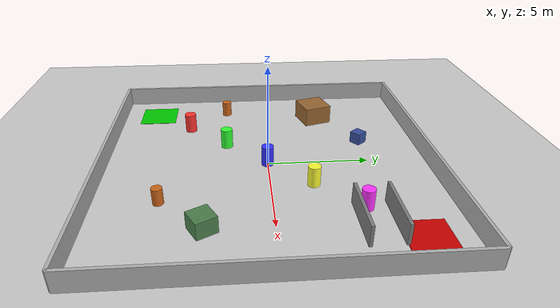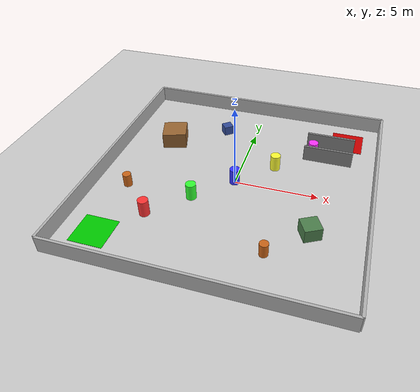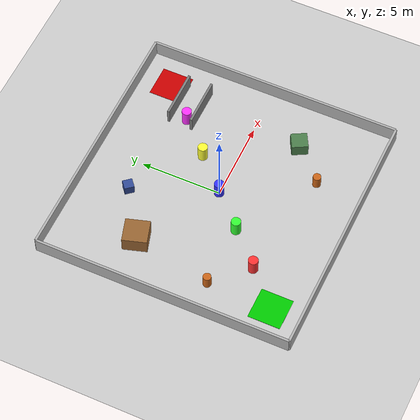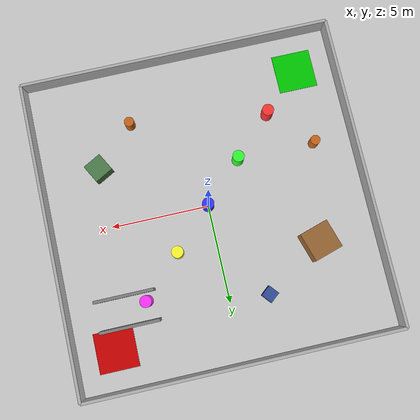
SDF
<?xml version="1.0" ?>
<sdf version="1.6">
  <world name="robosort_obstacle_course">

    <!-- Physics Settings -->
    <physics type="ode">
      <real_time_update_rate>1000.0</real_time_update_rate>
      <max_step_size>0.001</max_step_size>
      <real_time_factor>1</real_time_factor>
    </physics>

    <!-- Sun Light -->
    <include>
      <uri>model://sun</uri>
    </include>

    <!-- Ground Plane -->
    <include>
      <uri>model://ground_plane</uri>
    </include>

    <!-- Obstacle Course Layout                      -->
    <!-- A fun course to practice driving            -->

    <!-- Boundary Walls - Create an enclosed area -->

    <!-- North Boundary -->
    <model name="wall_north">
      <static>true</static>
      <pose>0 8 0.5 0 0 0</pose>
      <link name="link">
        <collision name="collision">
          <geometry><box><size>16 0.15 1</size></box></geometry>
        </collision>
        <visual name="visual">
          <geometry><box><size>16 0.15 1</size></box></geometry>
          <material><ambient>0.7 0.7 0.7 1</ambient></material>
        </visual>
      </link>
    </model>

    <!-- South Boundary -->
    <model name="wall_south">
      <static>true</static>
      <pose>0 -8 0.5 0 0 0</pose>
      <link name="link">
        <collision name="collision">
          <geometry><box><size>16 0.15 1</size></box></geometry>
        </collision>
        <visual name="visual">
          <geometry><box><size>16 0.15 1</size></box></geometry>
          <material><ambient>0.7 0.7 0.7 1</ambient></material>
        </visual>
      </link>
    </model>

    <!-- East Boundary -->
    <model name="wall_east">
      <static>true</static>
      <pose>8 0 0.5 0 0 0</pose>
      <link name="link">
        <collision name="collision">
          <geometry><box><size>0.15 16 1</size></box></geometry>
        </collision>
        <visual name="visual">
          <geometry><box><size>0.15 16 1</size></box></geometry>
          <material><ambient>0.7 0.7 0.7 1</ambient></material>
        </visual>
      </link>
    </model>

    <!-- West Boundary -->
    <model name="wall_west">
      <static>true</static>
      <pose>-8 0 0.5 0 0 0</pose>
      <link name="link">
        <collision name="collision">
          <geometry><box><size>0.15 16 1</size></box></geometry>
        </collision>
        <visual name="visual">
          <geometry><box><size>0.15 16 1</size></box></geometry>
          <material><ambient>0.7 0.7 0.7 1</ambient></material>
        </visual>
      </link>
    </model>

    <!-- Slalom Course - Weave through these!       -->

    <model name="slalom_1">
      <static>true</static>
      <pose>-4 -4 0.5 0 0 0</pose>
      <link name="link">
        <collision name="collision">
          <geometry><cylinder><radius>0.3</radius><length>1.0</length></cylinder></geometry>
        </collision>
        <visual name="visual">
          <geometry><cylinder><radius>0.3</radius><length>1.0</length></cylinder></geometry>
          <material><ambient>1 0.2 0.2 1</ambient></material>
        </visual>
      </link>
    </model>

    <model name="slalom_2">
      <static>true</static>
      <pose>-2 -2 0.5 0 0 0</pose>
      <link name="link">
        <collision name="collision">
          <geometry><cylinder><radius>0.3</radius><length>1.0</length></cylinder></geometry>
        </collision>
        <visual name="visual">
          <geometry><cylinder><radius>0.3</radius><length>1.0</length></cylinder></geometry>
          <material><ambient>0.2 1 0.2 1</ambient></material>
        </visual>
      </link>
    </model>

    <model name="slalom_3">
      <static>true</static>
      <pose>0 0 0.5 0 0 0</pose>
      <link name="link">
        <collision name="collision">
          <geometry><cylinder><radius>0.3</radius><length>1.0</length></cylinder></geometry>
        </collision>
        <visual name="visual">
          <geometry><cylinder><radius>0.3</radius><length>1.0</length></cylinder></geometry>
          <material><ambient>0.2 0.2 1 1</ambient></material>
        </visual>
      </link>
    </model>

    <model name="slalom_4">
      <static>true</static>
      <pose>2 2 0.5 0 0 0</pose>
      <link name="link">
        <collision name="collision">
          <geometry><cylinder><radius>0.3</radius><length>1.0</length></cylinder></geometry>
        </collision>
        <visual name="visual">
          <geometry><cylinder><radius>0.3</radius><length>1.0</length></cylinder></geometry>
          <material><ambient>1 1 0.2 1</ambient></material>
        </visual>
      </link>
    </model>

    <model name="slalom_5">
      <static>true</static>
      <pose>4 4 0.5 0 0 0</pose>
      <link name="link">
        <collision name="collision">
          <geometry><cylinder><radius>0.3</radius><length>1.0</length></cylinder></geometry>
        </collision>
        <visual name="visual">
          <geometry><cylinder><radius>0.3</radius><length>1.0</length></cylinder></geometry>
          <material><ambient>1 0.2 1 1</ambient></material>
        </visual>
      </link>
    </model>

    <!-- Box Obstacles - Various sizes              -->

    <model name="box_large">
      <static>true</static>
      <pose>-5 3 0.5 0 0 0.3</pose>
      <link name="link">
        <collision name="collision">
          <geometry><box><size>1.5 1.5 1</size></box></geometry>
        </collision>
        <visual name="visual">
          <geometry><box><size>1.5 1.5 1</size></box></geometry>
          <material><ambient>0.6 0.4 0.2 1</ambient></material>
        </visual>
      </link>
    </model>

    <model name="box_medium">
      <static>true</static>
      <pose>5 -3 0.4 0 0 0.5</pose>
      <link name="link">
        <collision name="collision">
          <geometry><box><size>1 1 0.8</size></box></geometry>
        </collision>
        <visual name="visual">
          <geometry><box><size>1 1 0.8</size></box></geometry>
          <material><ambient>0.3 0.5 0.3 1</ambient></material>
        </visual>
      </link>
    </model>

    <model name="box_small">
      <static>true</static>
      <pose>-2 5 0.3 0 0 0.7</pose>
      <link name="link">
        <collision name="collision">
          <geometry><box><size>0.6 0.6 0.6</size></box></geometry>
        </collision>
        <visual name="visual">
          <geometry><box><size>0.6 0.6 0.6</size></box></geometry>
          <material><ambient>0.2 0.3 0.6 1</ambient></material>
        </visual>
      </link>
    </model>

    <!-- Narrow Passage - Skill test!               -->

    <model name="passage_left">
      <static>true</static>
      <pose>5 5 0.5 0 0 0</pose>
      <link name="link">
        <collision name="collision">
          <geometry><box><size>3 0.15 1</size></box></geometry>
        </collision>
        <visual name="visual">
          <geometry><box><size>3 0.15 1</size></box></geometry>
          <material><ambient>0.5 0.5 0.5 1</ambient></material>
        </visual>
      </link>
    </model>

    <model name="passage_right">
      <static>true</static>
      <pose>5 3.5 0.5 0 0 0</pose>
      <link name="link">
        <collision name="collision">
          <geometry><box><size>3 0.15 1</size></box></geometry>
        </collision>
        <visual name="visual">
          <geometry><box><size>3 0.15 1</size></box></geometry>
          <material><ambient>0.5 0.5 0.5 1</ambient></material>
        </visual>
      </link>
    </model>

    <!-- Barrel Obstacles                           -->

    <model name="barrel_1">
      <static>true</static>
      <pose>-6 -2 0.4 0 0 0</pose>
      <link name="link">
        <collision name="collision">
          <geometry><cylinder><radius>0.25</radius><length>0.8</length></cylinder></geometry>
        </collision>
        <visual name="visual">
          <geometry><cylinder><radius>0.25</radius><length>0.8</length></cylinder></geometry>
          <material><ambient>0.8 0.4 0.1 1</ambient></material>
        </visual>
      </link>
    </model>

    <model name="barrel_2">
      <static>true</static>
      <pose>3 -5 0.4 0 0 0</pose>
      <link name="link">
        <collision name="collision">
          <geometry><cylinder><radius>0.25</radius><length>0.8</length></cylinder></geometry>
        </collision>
        <visual name="visual">
          <geometry><cylinder><radius>0.25</radius><length>0.8</length></cylinder></geometry>
          <material><ambient>0.8 0.4 0.1 1</ambient></material>
        </visual>
      </link>
    </model>

    <!-- Start/Finish Zone Markers                  -->

    <model name="start_marker">
      <static>true</static>
      <pose>-6 -6 0.01 0 0 0</pose>
      <link name="link">
        <visual name="visual">
          <geometry><box><size>2 2 0.02</size></box></geometry>
          <material><ambient>0 0.8 0 1</ambient></material>
        </visual>
      </link>
    </model>

    <model name="finish_marker">
      <static>true</static>
      <pose>6 6 0.01 0 0 0</pose>
      <link name="link">
        <visual name="visual">
          <geometry><box><size>2 2 0.02</size></box></geometry>
          <material><ambient>0.8 0 0 1</ambient></material>
        </visual>
      </link>
    </model>

    <!-- Scene Configuration -->
    <scene>
      <ambient>0.4 0.4 0.4 1</ambient>
      <background>0.7 0.85 1 1</background>
      <shadows>1</shadows>
    </scene>

    <!-- GUI Settings -->
    <gui fullscreen='0'>
      <camera name='user_camera'>
        <pose>-12 -12 12 0 0.6 0.785</pose>
        <view_controller>orbit</view_controller>
      </camera>
    </gui>

  </world>
</sdf>
